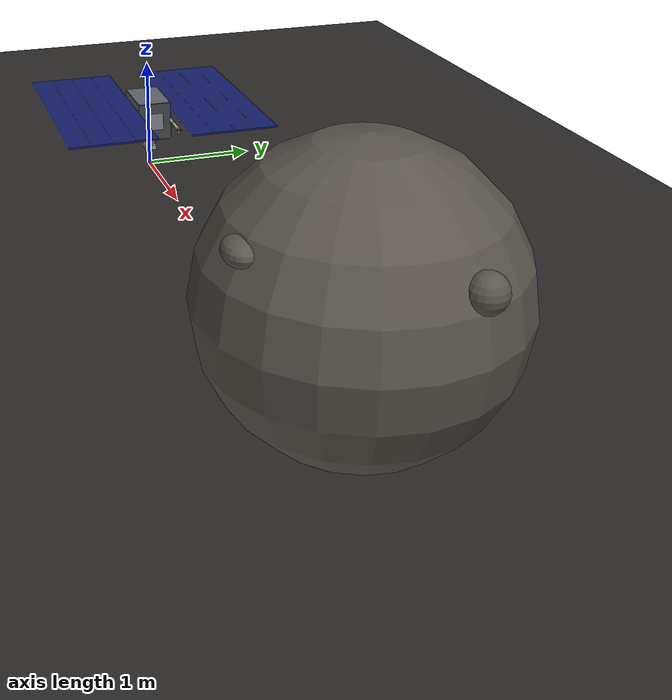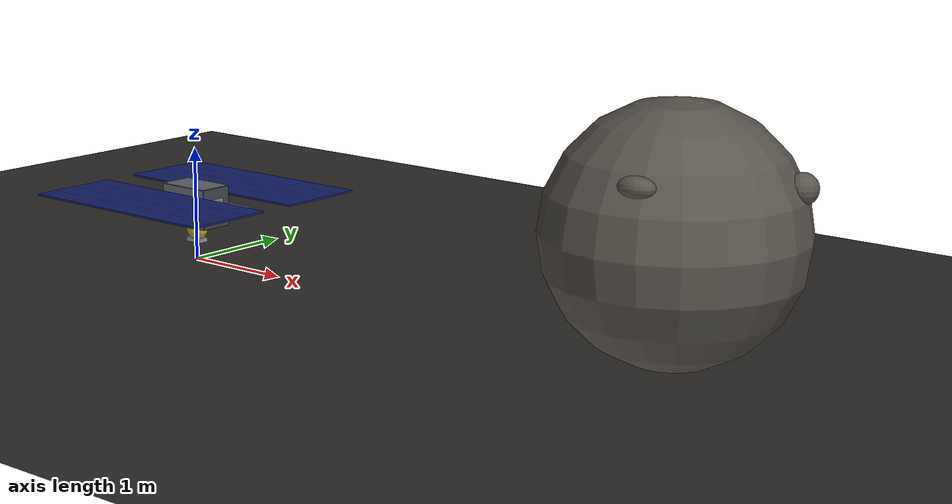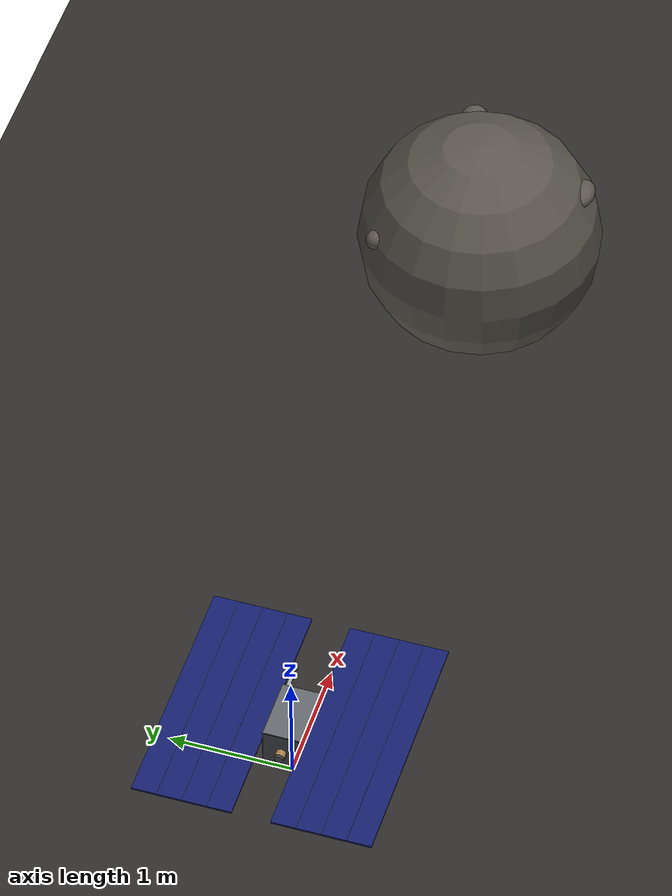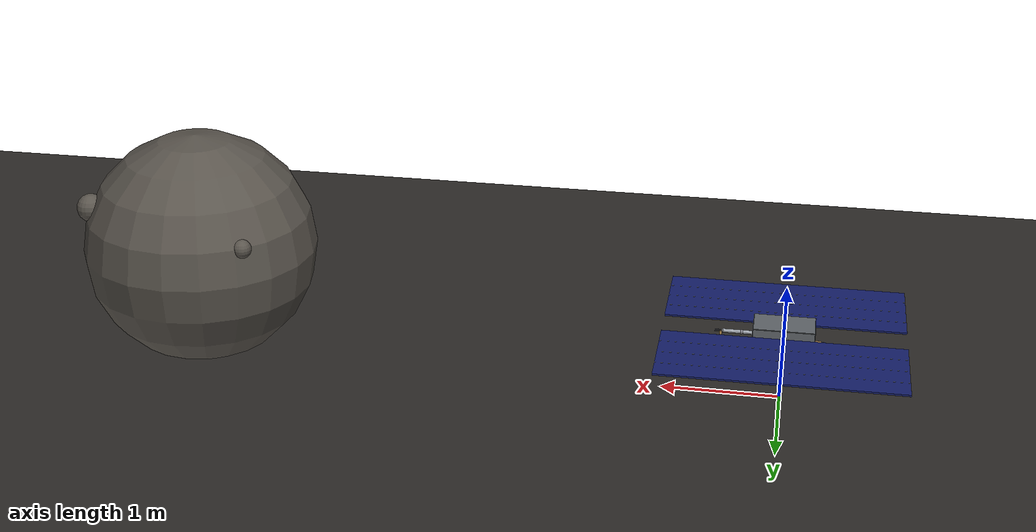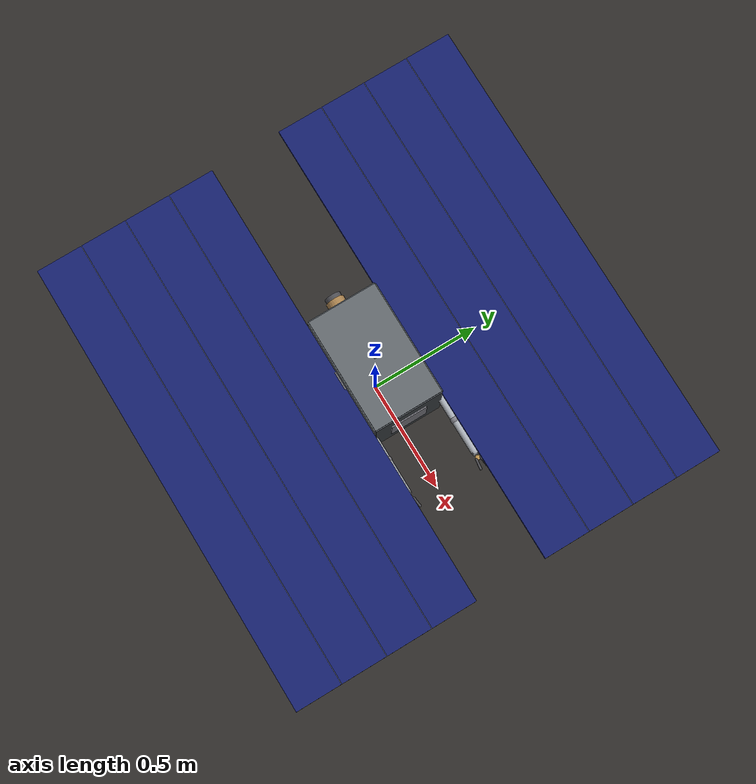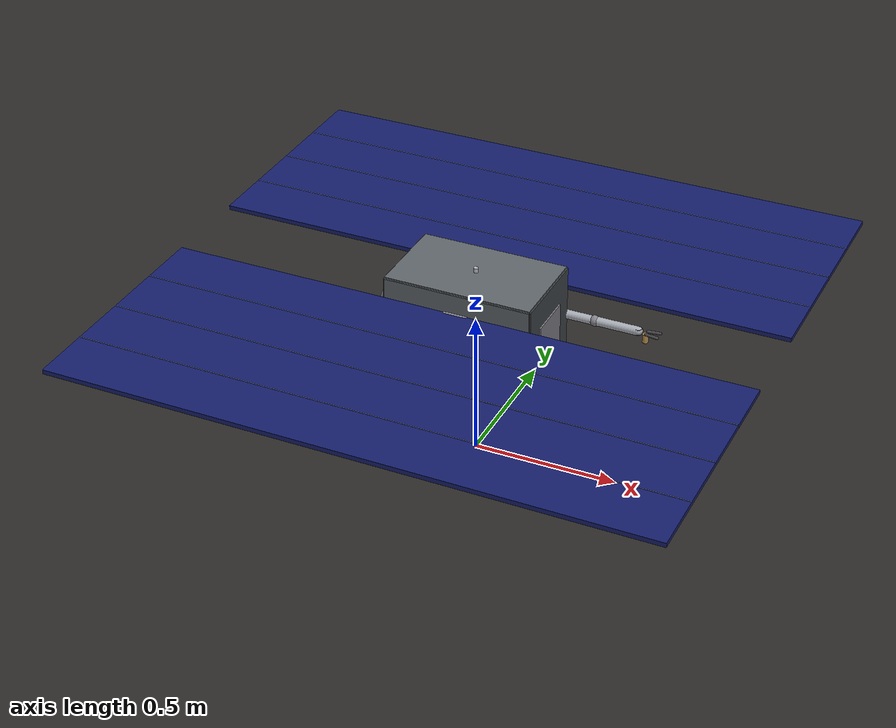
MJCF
<mujoco model="astraant_seed_mothership">

  <compiler angle="degree" coordinate="local"/>

  <option timestep="0.002" gravity="0 0 -6e-6">
    <!-- Bennu surface gravity default. Override in test script. -->
    <flag contact="enable"/>
  </option>

  <default>
    <joint damping="0.5" armature="0.001" limited="true"/>
    <geom condim="4" friction="0.6 0.01 0.001" solref="0.02 1"/>
  </default>

  <asset>
    <!-- Structural materials -->
    <material name="hull_aluminum"    rgba="0.38 0.40 0.42 1"/>
    <material name="hull_dark"        rgba="0.25 0.27 0.29 1"/>
    <material name="electronics_green" rgba="0.12 0.30 0.15 1"/>
    <material name="pump_gray"        rgba="0.50 0.52 0.50 1"/>
    <material name="cell_copper"      rgba="0.60 0.45 0.25 1"/>
    <material name="propellant_amber" rgba="0.55 0.35 0.15 0.85"/>

    <!-- Power materials -->
    <material name="solar_blue"       rgba="0.08 0.12 0.42 1"/>
    <material name="solar_grid"       rgba="0.55 0.58 0.62 1"/>
    <material name="battery_black"    rgba="0.15 0.15 0.18 1"/>

    <!-- Propulsion materials -->
    <material name="ion_copper"       rgba="0.65 0.50 0.30 1"/>
    <material name="nozzle_dark"      rgba="0.30 0.30 0.32 1"/>
    <material name="cold_gas_silver"  rgba="0.70 0.72 0.74 1"/>

    <!-- Arm materials -->
    <material name="arm_aluminum"     rgba="0.65 0.67 0.70 1"/>
    <material name="joint_steel"      rgba="0.50 0.50 0.53 1"/>
    <material name="gripper_dark"     rgba="0.28 0.28 0.30 1"/>
    <material name="waam_bronze"      rgba="0.70 0.55 0.30 1"/>

    <!-- Chemistry / membrane -->
    <material name="membrane_gold"    rgba="0.78 0.65 0.20 0.90"/>

    <!-- Environment -->
    <material name="asteroid_gray"    rgba="0.35 0.33 0.30 1"/>
    <material name="ground_dark"      rgba="0.18 0.17 0.16 1"/>
  </asset>

  <worldbody>
    <!-- Lighting: deep-space feel with strong key light -->
    <light diffuse="0.95 0.93 0.88" dir="-0.3 -0.2 -1" pos="3 3 8"/>
    <light diffuse="0.15 0.15 0.20" dir="0.5 0.5 -0.2" pos="-5 -5 5"/>
    <light diffuse="0.08 0.08 0.12" dir="0 0 -1" pos="0 0 10"/>

    <!-- Dark ground plane (visual reference only) -->
    <geom name="ground" type="plane" size="20 20 0.1"
          material="ground_dark" friction="0.5 0.01 0.001"
          solref="0.02 0.9" solimp="0.9 0.95 0.001"/>

    <!-- ASTEROID ROCK: 2m diameter sphere                            -->
    <!-- C-type rubble pile density ~1200 kg/m3                       -->
    <!-- Volume = 4/3 * pi * 1^3 = 4.189 m3                          -->
    <!-- Mass = 4.189 * 1200 = 5027 kg                               -->
    <body name="asteroid" pos="5 0 1.0">
      <freejoint name="rock_joint"/>
      <geom name="rock" type="sphere" size="1.0"
            mass="5027" material="asteroid_gray"
            friction="0.4 0.01 0.001"/>
      <!-- Surface boulders for visual interest -->
      <geom name="boulder_1" type="sphere" size="0.12"
            pos="0.85 0.3 0.4" mass="0" material="asteroid_gray"/>
      <geom name="boulder_2" type="sphere" size="0.08"
            pos="-0.6 0.7 0.3" mass="0" material="asteroid_gray"/>
      <geom name="boulder_3" type="ellipsoid" size="0.15 0.10 0.08"
            pos="0.2 -0.8 0.5" mass="0" material="asteroid_gray"/>
    </body>

    <!-- SEED MOTHERSHIP: 40.8 kg, 0.50 x 0.35 x 0.30 m stowed      -->
    <body name="mothership" pos="0 0 0.5">
      <freejoint name="ship_root"/>

      <!-- Tracking camera (follows mothership) -->
      <camera name="track" pos="0 -2.5 1.0" xyaxes="1 0 0 0 0.4 1"
              mode="track"/>
      <!-- Side view -->
      <camera name="side" pos="3.0 0 0.3" xyaxes="0 1 0 -0.1 0 1"
              mode="track"/>

      <!-- MAIN HULL: Al 6061-T6 frame                              -->
      <!-- 0.50 x 0.30 x 0.35 m box                                 -->
      <!-- Structure mass: 3.2 kg (frame + springs + clamp)          -->
      <!-- + Compute 0.8 kg + Misc 1.4 kg + Bio 0.65 kg             -->
      <!-- + Bot parts 0.68 kg = 6.73 kg in the hull shell           -->
      <geom name="hull_top" type="box" size="0.25 0.15 0.005"
            pos="0 0 0.175" mass="0.8" material="hull_aluminum"/>
      <geom name="hull_bottom" type="box" size="0.25 0.15 0.005"
            pos="0 0 -0.175" mass="0.8" material="hull_aluminum"/>
      <geom name="hull_left" type="box" size="0.25 0.005 0.175"
            pos="0 0.15 0" mass="0.5" material="hull_aluminum"/>
      <geom name="hull_right" type="box" size="0.25 0.005 0.175"
            pos="0 -0.15 0" mass="0.5" material="hull_aluminum"/>
      <geom name="hull_front" type="box" size="0.005 0.15 0.175"
            pos="0.25 0 0" mass="0.3" material="hull_dark"/>
      <geom name="hull_rear" type="box" size="0.005 0.15 0.175"
            pos="-0.25 0 0" mass="0.3" material="hull_dark"/>

      <!-- INTERNAL BAYS (visible sub-boxes)                         -->

      <!-- Electronics bay (center top): Compute 0.8 kg + Bio 0.65 kg  -->
      <!-- + Bot parts 0.68 kg + Misc 1.4 kg + Springs 0.3 kg = 3.83 kg -->
      <geom name="electronics_bay" type="box" size="0.10 0.06 0.04"
            pos="0 0 0.10" mass="3.83"
            material="electronics_green"/>
      <!-- ESP32-S3 TMR + watchdog + radios + sensors + bio + bots + misc -->

      <!-- Pump bay (left front): Peristaltic pump 2.5 kg + spare 1.0 kg -->
      <!-- + tubing 0.8 kg + bladder 0.4 kg + sensors 0.1 kg = 4.8 kg   -->
      <geom name="pump_bay" type="box" size="0.10 0.06 0.07"
            pos="0.10 0.07 -0.02" mass="4.8"
            material="pump_gray"/>

      <!-- Electro-winning cell bay (right front): 3.1 kg -->
      <!-- Anode 1.5 kg + cathodes 1.0 kg + converter 0.3 kg + frame 0.3 kg -->
      <geom name="ewin_cell_bay" type="box" size="0.10 0.06 0.07"
            pos="0.10 -0.07 -0.02" mass="3.1"
            material="cell_copper"/>

      <!-- Propellant block (center rear): iodine 5.0 kg + N2 tank 0.5 kg -->
      <geom name="propellant_block" type="box" size="0.10 0.075 0.075"
            pos="-0.10 0 0" mass="5.5"
            material="propellant_amber"/>

      <!-- Battery pack (under electronics): 2x 0.8 kg = 1.6 kg -->
      <geom name="battery_L" type="box" size="0.06 0.04 0.025"
            pos="0.04 0.05 0.05" mass="0.8"
            material="battery_black"/>
      <geom name="battery_R" type="box" size="0.06 0.04 0.025"
            pos="0.04 -0.05 0.05" mass="0.8"
            material="battery_black"/>

      <!-- MPPT + power distribution: 0.4 kg -->
      <geom name="mppt" type="box" size="0.04 0.05 0.015"
            pos="-0.04 0 0.13" mass="0.4"
            material="electronics_green"/>

      <!-- Rock clamp + aperture frame: 0.4 kg (on front face) -->
      <geom name="rock_clamp" type="box" size="0.005 0.08 0.08"
            pos="0.255 0 0" mass="0.4"
            material="joint_steel"/>

      <!-- SOLAR WING - LEFT (deployable, 2.0 x 0.8 x 0.015 m)     -->
      <!-- Mass: 1.5 kg per wing                                    -->
      <!-- Hinge at body left edge, deploys outward 0-180 deg       -->
      <body name="solar_wing_L" pos="0 0.155 0.10">
        <joint name="j_solar_L" type="hinge" axis="1 0 0"
               range="0 180" damping="2.0" armature="0.01"/>
        <!-- Panel center is 0.4m out from hinge (half of 0.8m width) -->
        <geom name="solar_panel_L" type="box" size="1.0 0.40 0.0075"
              pos="0 0.40 0" mass="1.4" material="solar_blue"/>
        <!-- Solar cell grid lines -->
        <geom name="solar_grid_L1" type="box" size="1.0 0.001 0.008"
              pos="0 0.20 0" mass="0.025" material="solar_grid"/>
        <geom name="solar_grid_L2" type="box" size="1.0 0.001 0.008"
              pos="0 0.40 0" mass="0.025" material="solar_grid"/>
        <geom name="solar_grid_L3" type="box" size="1.0 0.001 0.008"
              pos="0 0.60 0" mass="0.025" material="solar_grid"/>
        <geom name="solar_hinge_L" type="cylinder" size="0.01 0.04"
              pos="0 0 0" mass="0.025" material="joint_steel"
              euler="0 90 0"/>
      </body>

      <!-- SOLAR WING - RIGHT (mirror of left)                      -->
      <body name="solar_wing_R" pos="0 -0.155 0.10">
        <joint name="j_solar_R" type="hinge" axis="-1 0 0"
               range="0 180" damping="2.0" armature="0.01"/>
        <geom name="solar_panel_R" type="box" size="1.0 0.40 0.0075"
              pos="0 -0.40 0" mass="1.4" material="solar_blue"/>
        <geom name="solar_grid_R1" type="box" size="1.0 0.001 0.008"
              pos="0 -0.20 0" mass="0.025" material="solar_grid"/>
        <geom name="solar_grid_R2" type="box" size="1.0 0.001 0.008"
              pos="0 -0.40 0" mass="0.025" material="solar_grid"/>
        <geom name="solar_grid_R3" type="box" size="1.0 0.001 0.008"
              pos="0 -0.60 0" mass="0.025" material="solar_grid"/>
        <geom name="solar_hinge_R" type="cylinder" size="0.01 0.04"
              pos="0 0 0" mass="0.025" material="joint_steel"
              euler="0 90 0"/>
      </body>

      <!-- ROBOTIC ARM - LEFT (3-DOF + 2-finger gripper)            -->
      <!-- Total per arm: 1.5 kg (assembly) + WAAM/tools split      -->
      <!-- Stepper motors: 0.5 N*m torque each joint                -->
      <!-- Each arm segment: capsule 0.15m, radius 0.015m           -->
      <!-- 30cm reach total (2 x 0.15m segments)                    -->
      <body name="arm_L_shoulder" pos="0.20 0.155 0">
        <joint name="j_arm_L_shoulder" type="hinge" axis="0 1 0"
               range="-90 90" damping="1.0" armature="0.005"/>
        <geom name="arm_L_shoulder_hub" type="sphere" size="0.02"
              mass="0.25" material="joint_steel"/>

        <!-- Upper arm: stepper motor + Al linkage -->
        <geom name="arm_L_upper" type="capsule"
              fromto="0 0 0  0.15 0 0"
              size="0.015" mass="0.50" material="arm_aluminum"/>

        <body name="arm_L_elbow" pos="0.15 0 0">
          <joint name="j_arm_L_elbow" type="hinge" axis="0 1 0"
                 range="-120 120" damping="0.8" armature="0.003"/>
          <geom name="arm_L_elbow_hub" type="sphere" size="0.018"
                mass="0.20" material="joint_steel"/>

          <!-- Forearm: motor + harness + lubricant -->
          <geom name="arm_L_forearm" type="capsule"
                fromto="0 0 0  0.15 0 0"
                size="0.015" mass="0.45" material="arm_aluminum"/>

          <body name="arm_L_wrist" pos="0.15 0 0">
            <joint name="j_arm_L_wrist" type="hinge" axis="0 0 1"
                   range="-90 90" damping="0.5" armature="0.002"/>
            <geom name="arm_L_wrist_hub" type="cylinder"
                  size="0.012 0.01" mass="0.15"
                  material="joint_steel"/>

            <!-- WAAM nozzle: 0.01m radius x 0.03m tall -->
            <geom name="waam_nozzle_L" type="cylinder"
                  size="0.01 0.015" pos="0.025 0 -0.02"
                  mass="0.15" material="waam_bronze"/>

            <!-- Arm-tip camera -->
            <camera name="arm_L_cam" pos="0.03 0 0.01"
                    xyaxes="0 1 0 0 0 1"/>

            <!-- Gripper finger LEFT -->
            <body name="arm_L_finger_L" pos="0.03 0.01 0">
              <joint name="j_arm_L_finger_L" type="hinge"
                     axis="0 0 1" range="0 45"
                     damping="0.2" armature="0.001"/>
              <geom name="arm_L_finger_L_geom" type="capsule"
                    fromto="0 0 0  0.04 0.005 0"
                    size="0.005" mass="0.03"
                    material="gripper_dark"/>
            </body>

            <!-- Gripper finger RIGHT -->
            <body name="arm_L_finger_R" pos="0.03 -0.01 0">
              <joint name="j_arm_L_finger_R" type="hinge"
                     axis="0 0 -1" range="0 45"
                     damping="0.2" armature="0.001"/>
              <geom name="arm_L_finger_R_geom" type="capsule"
                    fromto="0 0 0  0.04 -0.005 0"
                    size="0.005" mass="0.03"
                    material="gripper_dark"/>
            </body>
          </body>
        </body>
      </body>

      <!-- ROBOTIC ARM - RIGHT (mirror, same specs)                 -->
      <body name="arm_R_shoulder" pos="0.20 -0.155 0">
        <joint name="j_arm_R_shoulder" type="hinge" axis="0 1 0"
               range="-90 90" damping="1.0" armature="0.005"/>
        <geom name="arm_R_shoulder_hub" type="sphere" size="0.02"
              mass="0.25" material="joint_steel"/>

        <geom name="arm_R_upper" type="capsule"
              fromto="0 0 0  0.15 0 0"
              size="0.015" mass="0.50" material="arm_aluminum"/>

        <body name="arm_R_elbow" pos="0.15 0 0">
          <joint name="j_arm_R_elbow" type="hinge" axis="0 1 0"
                 range="-120 120" damping="0.8" armature="0.003"/>
          <geom name="arm_R_elbow_hub" type="sphere" size="0.018"
                mass="0.20" material="joint_steel"/>

          <geom name="arm_R_forearm" type="capsule"
                fromto="0 0 0  0.15 0 0"
                size="0.015" mass="0.45" material="arm_aluminum"/>

          <body name="arm_R_wrist" pos="0.15 0 0">
            <joint name="j_arm_R_wrist" type="hinge" axis="0 0 1"
                   range="-90 90" damping="0.5" armature="0.002"/>
            <geom name="arm_R_wrist_hub" type="cylinder"
                  size="0.012 0.01" mass="0.15"
                  material="joint_steel"/>

            <geom name="waam_nozzle_R" type="cylinder"
                  size="0.01 0.015" pos="0.025 0 -0.02"
                  mass="0.15" material="waam_bronze"/>

            <!-- Arm-tip camera -->
            <camera name="arm_R_cam" pos="0.03 0 0.01"
                    xyaxes="0 1 0 0 0 1"/>

            <!-- Gripper finger LEFT -->
            <body name="arm_R_finger_L" pos="0.03 0.01 0">
              <joint name="j_arm_R_finger_L" type="hinge"
                     axis="0 0 1" range="0 45"
                     damping="0.2" armature="0.001"/>
              <geom name="arm_R_finger_L_geom" type="capsule"
                    fromto="0 0 0  0.04 0.005 0"
                    size="0.005" mass="0.03"
                    material="gripper_dark"/>
            </body>

            <body name="arm_R_finger_R" pos="0.03 -0.01 0">
              <joint name="j_arm_R_finger_R" type="hinge"
                     axis="0 0 -1" range="0 45"
                     damping="0.2" armature="0.001"/>
              <geom name="arm_R_finger_R_geom" type="capsule"
                    fromto="0 0 0  0.04 -0.005 0"
                    size="0.005" mass="0.03"
                    material="gripper_dark"/>
            </body>
          </body>
        </body>
      </body>

      <!-- ION ENGINE: BIT-3 class, 1.4 mN thrust, iodine-fed      -->
      <!-- 0.08m dia x 0.06m cylinder, 1.5 kg                       -->
      <!-- Mounted on rear face (-x direction)                       -->
      <geom name="ion_thruster" type="cylinder" size="0.04 0.03"
            pos="-0.28 0 0" mass="1.3"
            material="ion_copper" euler="0 90 0"/>
      <geom name="ion_nozzle" type="cylinder" size="0.035 0.01"
            pos="-0.32 0 0" mass="0.2"
            material="nozzle_dark" euler="0 90 0"/>

      <!-- Cold gas thrusters (4x, attitude control, 0.15 kg each) -->
      <geom name="rcs_top" type="cylinder" size="0.008 0.015"
            pos="0 0 0.18" mass="0.15" material="cold_gas_silver"/>
      <geom name="rcs_bottom" type="cylinder" size="0.008 0.015"
            pos="0 0 -0.18" mass="0.15" material="cold_gas_silver"/>
      <geom name="rcs_left" type="cylinder" size="0.008 0.015"
            pos="0 0.155 0" mass="0.15" material="cold_gas_silver"
            euler="90 0 0"/>
      <geom name="rcs_right" type="cylinder" size="0.008 0.015"
            pos="0 -0.155 0" mass="0.15" material="cold_gas_silver"
            euler="90 0 0"/>

      <!-- MEMBRANE BUNDLE: Kapton+Kevlar, 8.0 kg + concentrators   -->
      <!-- Ellipsoid under body: 0.25 x 0.12 x 0.20 m              -->
      <!-- Total chemistry package: 9.0 kg                          -->
      <!-- Spring-loaded spool, deploys to wrap 3m rock              -->
      <body name="membrane_bundle" pos="0 0 -0.22">
        <joint name="j_membrane_release" type="slide" axis="0 0 -1"
               range="0 0.3" damping="5.0" armature="0.01"
               ref="0"/>
        <geom name="membrane_spool" type="ellipsoid"
              size="0.125 0.06 0.10" mass="8.0"
              material="membrane_gold"/>
        <!-- Concentrator panels (folded, stowed against membrane) -->
        <geom name="concentrator_stowed" type="box"
              size="0.08 0.05 0.02" pos="0 0 -0.10"
              mass="0.8" material="solar_grid"/>
        <!-- Copper seed tape + magnet: small mass on spool -->
        <geom name="seed_tape" type="cylinder" size="0.02 0.005"
              pos="0.10 0 0" mass="0.2"
              material="cell_copper"/>
      </body>

    </body>
    <!-- END MOTHERSHIP -->

  </worldbody>

  <!-- ACTUATORS                                                     -->
  <actuator>
    <!-- Solar wing deployment: slow, high torque spring release -->
    <position name="deploy_solar_L" joint="j_solar_L" kp="20.0" kv="5.0"
              ctrlrange="0 180" forcerange="-5.0 5.0"/>
    <position name="deploy_solar_R" joint="j_solar_R" kp="20.0" kv="5.0"
              ctrlrange="0 180" forcerange="-5.0 5.0"/>

    <!-- Left arm: 3 joints + 2 gripper fingers -->
    <!-- Stepper motors: 0.5 N*m per joint -->
    <position name="arm_L_shoulder" joint="j_arm_L_shoulder"
              kp="50.0" kv="2.0" ctrlrange="-90 90"
              forcerange="-0.5 0.5"/>
    <position name="arm_L_elbow" joint="j_arm_L_elbow"
              kp="40.0" kv="1.5" ctrlrange="-120 120"
              forcerange="-0.5 0.5"/>
    <position name="arm_L_wrist" joint="j_arm_L_wrist"
              kp="30.0" kv="1.0" ctrlrange="-90 90"
              forcerange="-0.3 0.3"/>
    <position name="arm_L_grip_L" joint="j_arm_L_finger_L"
              kp="10.0" kv="0.5" ctrlrange="0 45"
              forcerange="-0.1 0.1"/>
    <position name="arm_L_grip_R" joint="j_arm_L_finger_R"
              kp="10.0" kv="0.5" ctrlrange="0 45"
              forcerange="-0.1 0.1"/>

    <!-- Right arm: mirror of left -->
    <position name="arm_R_shoulder" joint="j_arm_R_shoulder"
              kp="50.0" kv="2.0" ctrlrange="-90 90"
              forcerange="-0.5 0.5"/>
    <position name="arm_R_elbow" joint="j_arm_R_elbow"
              kp="40.0" kv="1.5" ctrlrange="-120 120"
              forcerange="-0.5 0.5"/>
    <position name="arm_R_wrist" joint="j_arm_R_wrist"
              kp="30.0" kv="1.0" ctrlrange="-90 90"
              forcerange="-0.3 0.3"/>
    <position name="arm_R_grip_L" joint="j_arm_R_finger_L"
              kp="10.0" kv="0.5" ctrlrange="0 45"
              forcerange="-0.1 0.1"/>
    <position name="arm_R_grip_R" joint="j_arm_R_finger_R"
              kp="10.0" kv="0.5" ctrlrange="0 45"
              forcerange="-0.1 0.1"/>

    <!-- Membrane release: slide actuator -->
    <position name="membrane_release" joint="j_membrane_release"
              kp="100.0" kv="10.0" ctrlrange="0 0.3"
              forcerange="-20.0 20.0"/>

    <!-- Ion engine thrust (BIT-3, 1.4 mN max) applied via           -->
    <!-- xfrc_applied in the test script since freejoints lack a      -->
    <!-- single translational axis for a general actuator.            -->
    <!-- data.xfrc_applied[ship_body_id, 0] = 0.0014  (Newtons, +x)  -->
  </actuator>

  <!-- SENSORS                                                       -->
  <sensor>
    <!-- Mothership state -->
    <framepos    name="ship_pos"    objtype="body" objname="mothership"/>
    <framequat   name="ship_quat"   objtype="body" objname="mothership"/>
    <framelinvel name="ship_vel"    objtype="body" objname="mothership"/>
    <frameangvel name="ship_angvel" objtype="body" objname="mothership"/>

    <!-- Asteroid state -->
    <framepos    name="rock_pos"    objtype="body" objname="asteroid"/>

    <!-- Arm joint positions (for feedback) -->
    <jointpos name="arm_L_sh_pos" joint="j_arm_L_shoulder"/>
    <jointpos name="arm_L_el_pos" joint="j_arm_L_elbow"/>
    <jointpos name="arm_L_wr_pos" joint="j_arm_L_wrist"/>
    <jointpos name="arm_R_sh_pos" joint="j_arm_R_shoulder"/>
    <jointpos name="arm_R_el_pos" joint="j_arm_R_elbow"/>
    <jointpos name="arm_R_wr_pos" joint="j_arm_R_wrist"/>

    <!-- Solar wing angles -->
    <jointpos name="solar_L_angle" joint="j_solar_L"/>
    <jointpos name="solar_R_angle" joint="j_solar_R"/>

    <!-- Membrane slide position -->
    <jointpos name="membrane_pos" joint="j_membrane_release"/>

    <!-- Wrist tip positions (for reach envelope) -->
    <framepos name="wrist_L_pos" objtype="body" objname="arm_L_wrist"/>
    <framepos name="wrist_R_pos" objtype="body" objname="arm_R_wrist"/>
  </sensor>

</mujoco>
